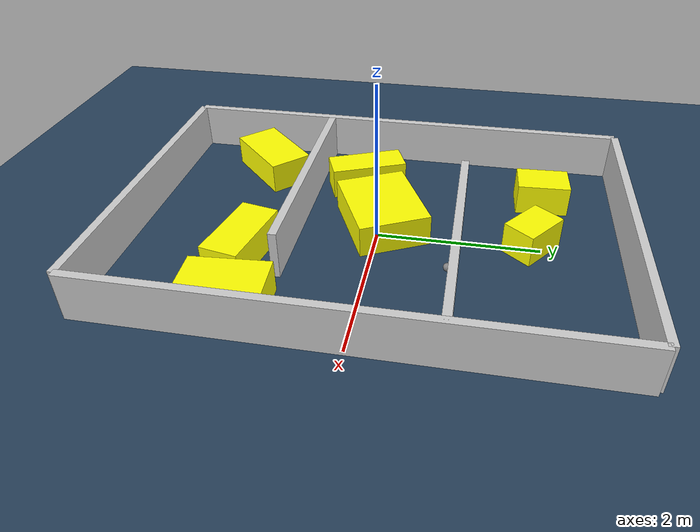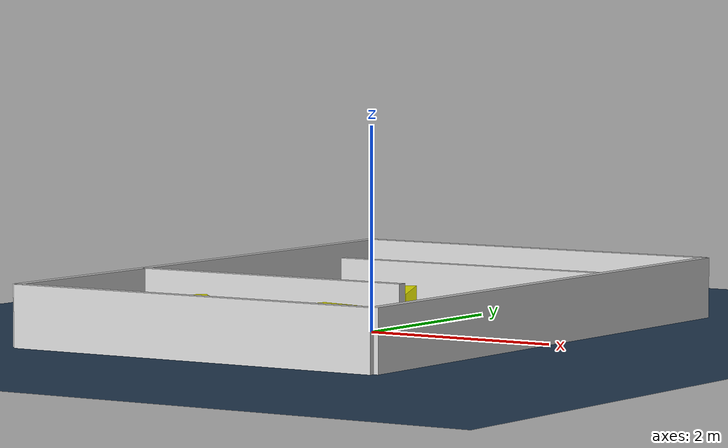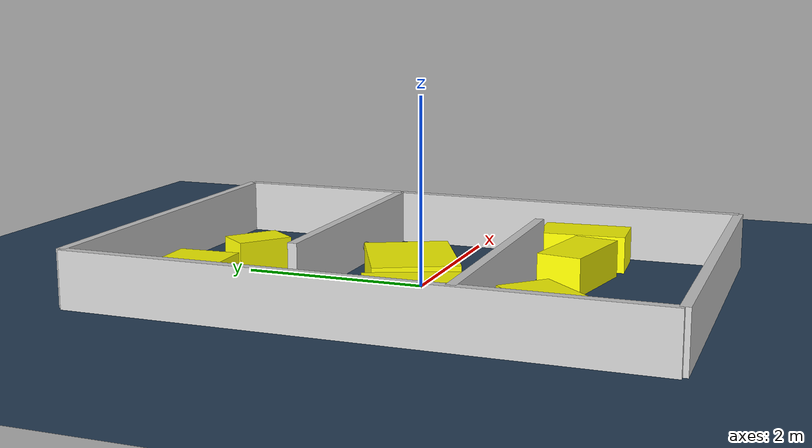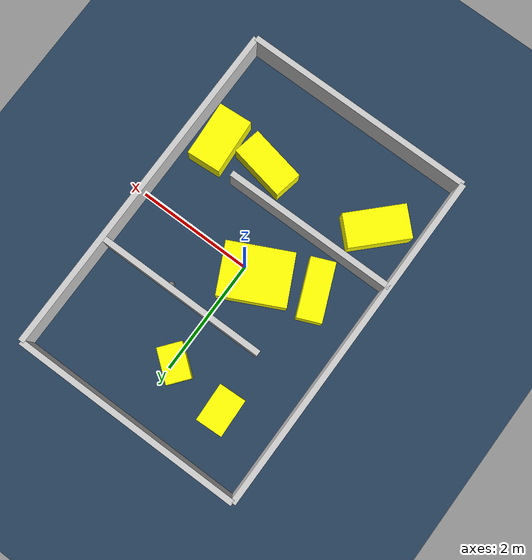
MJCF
<?xml version="1.0" ?>
<mujoco model="generated_environment">
  <option timestep="0.01" integrator="RK4" cone="elliptic"/>
  <default>
    <geom density="1"/>
  </default>
  <asset>
    <texture builtin="gradient" height="3072" rgb1="0.3 0.5 0.7" rgb2="0 0 0" type="skybox" width="512"/>
    <texture builtin="checker" height="300" mark="edge" markrgb="0.8 0.8 0.8" name="groundplane" rgb1="0.2 0.3 0.4" rgb2="0.1 0.2 0.3" type="2d" width="300"/>
    <material name="groundplane" reflectance="0.2" texrepeat="5 5" texture="groundplane" texuniform="true"/>
    <material name="robot" rgba="0.0 1.0 0.0 1"/>
  </asset>
  <worldbody>
    <light dir="0 0 -1" directional="true" pos="0 0 1.5"/>
    <geom condim="4" friction="1.0 0.005 0.001" material="groundplane" name="floor" size="0 0 0.05" type="plane"/>
    <body name="walls">
      <geom name="wall_1" condim="4" pos="-2.0 0.0 0.3" rgba="0.800000011920929 0.800000011920929 0.800000011920929 1.0" size="0.05 3.0 0.3" type="box"/>
      <geom name="wall_2" condim="4" pos="2.0 0.0 0.3" rgba="0.800000011920929 0.800000011920929 0.800000011920929 1.0" size="0.05 3.0 0.3" type="box"/>
      <geom name="wall_3" condim="4" pos="0.0 -3.0 0.3" rgba="0.800000011920929 0.800000011920929 0.800000011920929 1.0" size="2.0 0.05 0.3" type="box"/>
      <geom name="wall_4" condim="4" pos="0.0 3.0 0.3" rgba="0.800000011920929 0.800000011920929 0.800000011920929 1.0" size="2.0 0.05 0.3" type="box"/>
      <geom name="wall_5" condim="4" pos="-0.5 -1.0 0.3" rgba="0.800000011920929 0.800000011920929 0.800000011920929 1.0" size="1.5 0.05 0.3" type="box"/>
      <geom name="wall_6" condim="4" pos="0.5 1.0 0.3" rgba="0.800000011920929 0.800000011920929 0.800000011920929 1.0" size="1.5 0.05 0.3" type="box"/>
    </body>
    <body name="robot">
      <joint name="joint_x" type="slide" pos="0 0 0" axis="1 0 0"/>
      <joint name="joint_y" type="slide" pos="0 0 0" axis="0 1 0"/>
      <geom name="robot" type="sphere" pos="0.7405190781479387 0.9298382044646893 0.2" size="0.05" mass="5." friction="1.0 0.005 0.0001" condim="4"/>
      <site name="sensor_ball"/>
    </body>
    <body name="obstacle_1_movable">
      <geom name="obstacle_1_movable" condim="4" pos="-0.04181419760805638 1.8812242925547813 0.2" euler="0 0 51.502976279217535" friction="1.0 0.005 0.001" rgba="1 1 0 1" size="0.2075546187680551 0.29760247472807577 0.2" type="box" mass="0.1"/>
      <joint type="free"/>
    </body>
    <body name="obstacle_2_movable">
      <geom name="obstacle_2_movable" condim="4" pos="1.5329842993928509 -1.3873390675374189 0.2" euler="0 0 93.89823500715181" friction="1.0 0.005 0.001" rgba="1 1 0 1" size="0.4784888093247149 0.29107413222704953 0.2" type="box" mass="0.1"/>
      <joint type="free"/>
    </body>
    <body name="obstacle_3_movable">
      <geom name="obstacle_3_movable" condim="4" pos="-1.3069779079678103 -1.7190079519218728 0.2" euler="0 0 315.3574135767609" friction="1.0 0.005 0.001" rgba="1 1 0 1" size="0.2834585784019645 0.5188797384828813 0.2" type="box" mass="0.1"/>
      <joint type="free"/>
    </body>
    <body name="obstacle_4_movable">
      <geom name="obstacle_4_movable" condim="4" pos="-1.1316152297103774 -0.3328509124703598 0.2" euler="0 0 22.634944197077644" friction="1.0 0.005 0.001" rgba="1 1 0 1" size="0.2070274592010896 0.49620367341582583 0.2" type="box" mass="0.1"/>
      <joint type="free"/>
    </body>
    <body name="obstacle_5_movable">
      <geom name="obstacle_5_movable" condim="4" pos="-0.23294448574771986 0.026620047926889878 0.2" euler="0 0 116.19736288913994" friction="1.0 0.005 0.001" rgba="1 1 0 1" size="0.4462553593540909 0.5638070605205998 0.2" type="box" mass="0.1"/>
      <joint type="free"/>
    </body>
    <body name="obstacle_6_movable">
      <geom name="obstacle_6_movable" condim="4" pos="-1.0458448965929423 2.0256895016976664 0.2" euler="0 0 272.5085538772762" friction="1.0 0.005 0.001" rgba="1 1 0 1" size="0.32880579158747225 0.23260033462862872 0.2" type="box" mass="0.1"/>
      <joint type="free"/>
    </body>
    <body name="obstacle_7_movable">
      <geom name="obstacle_7_movable" condim="4" pos="0.6759237035032373 -1.5068477941570364 0.2" euler="0 0 78.93851552215548" friction="1.0 0.005 0.001" rgba="1 1 0 1" size="0.2419675728818468 0.4884146643536518 0.2" type="box" mass="0.1"/>
      <joint type="free"/>
    </body>
  </worldbody>
  <actuator>
    <motor name="actuator_x" joint="joint_x" gear="1" ctrlrange="-1 1"/>
    <motor name="actuator_y" joint="joint_y" gear="1" ctrlrange="-1 1"/>
  </actuator>
</mujoco>
